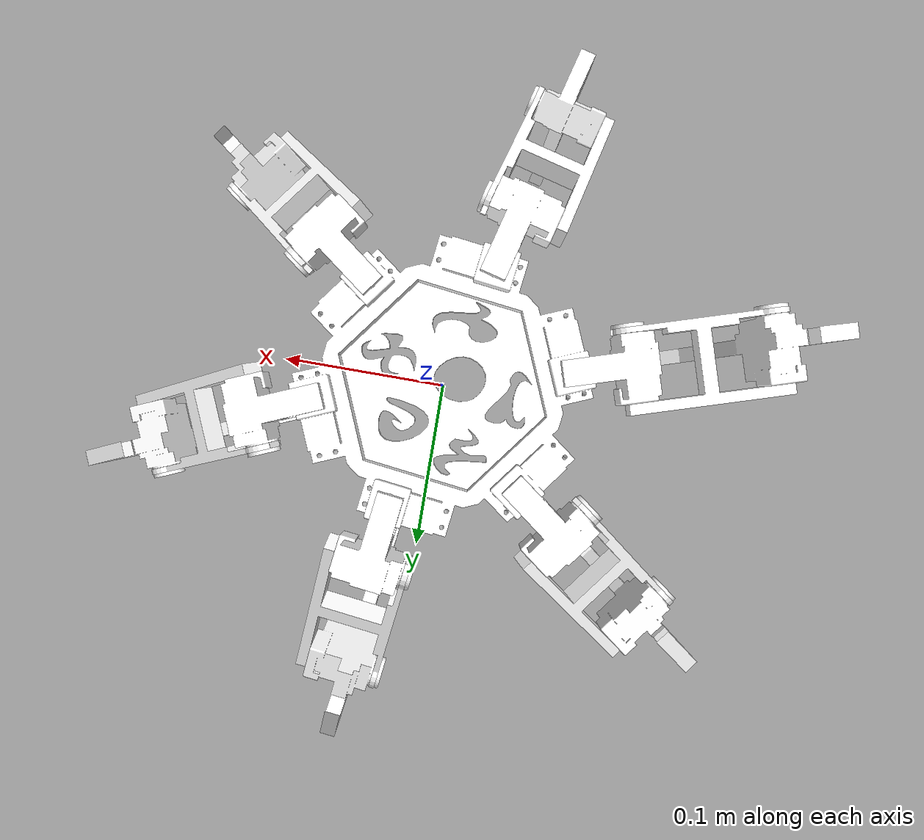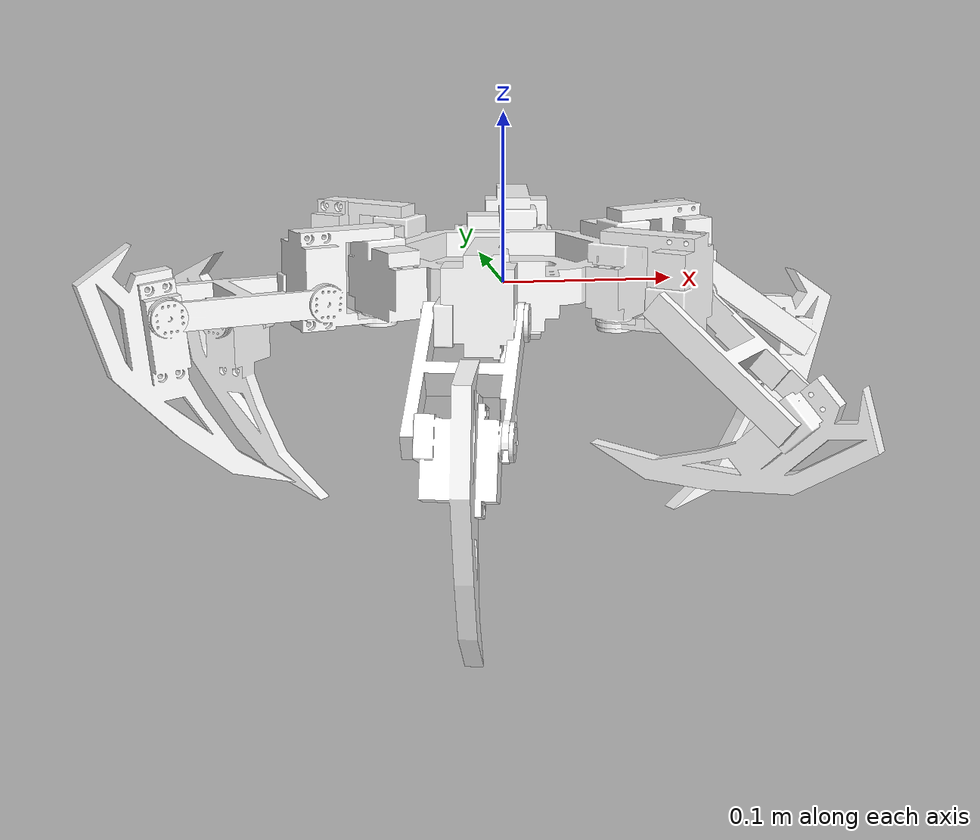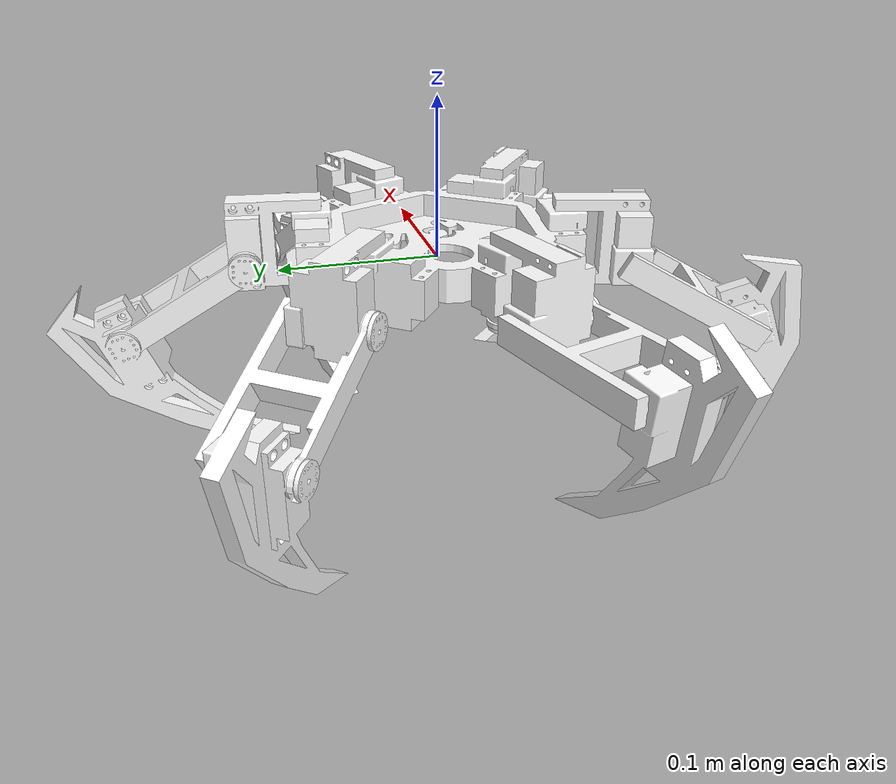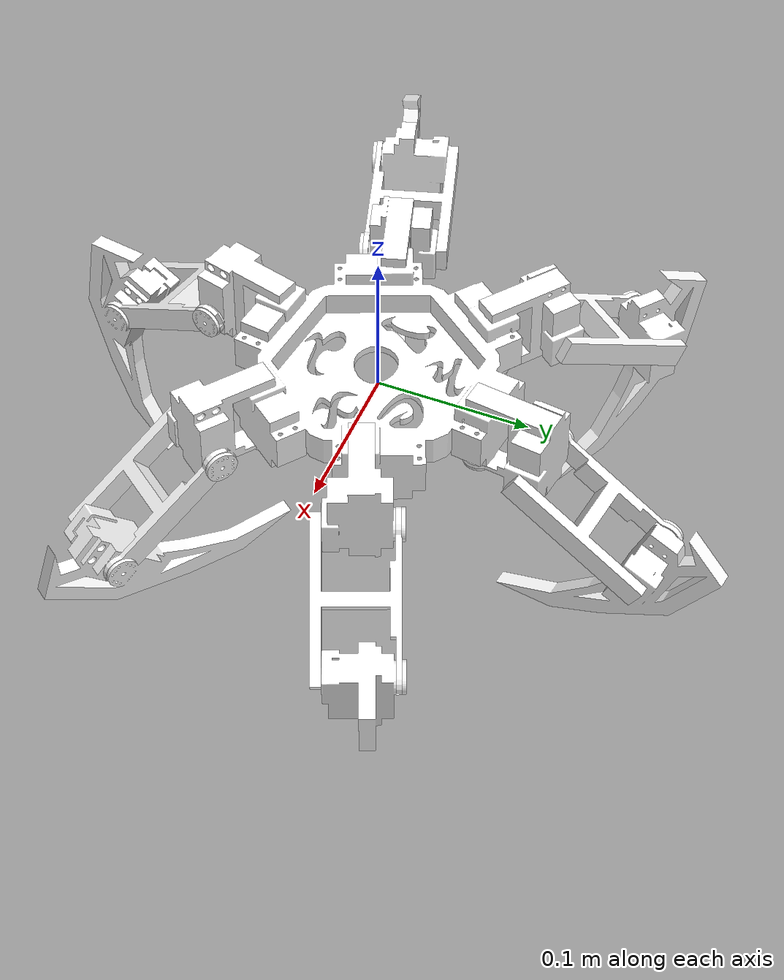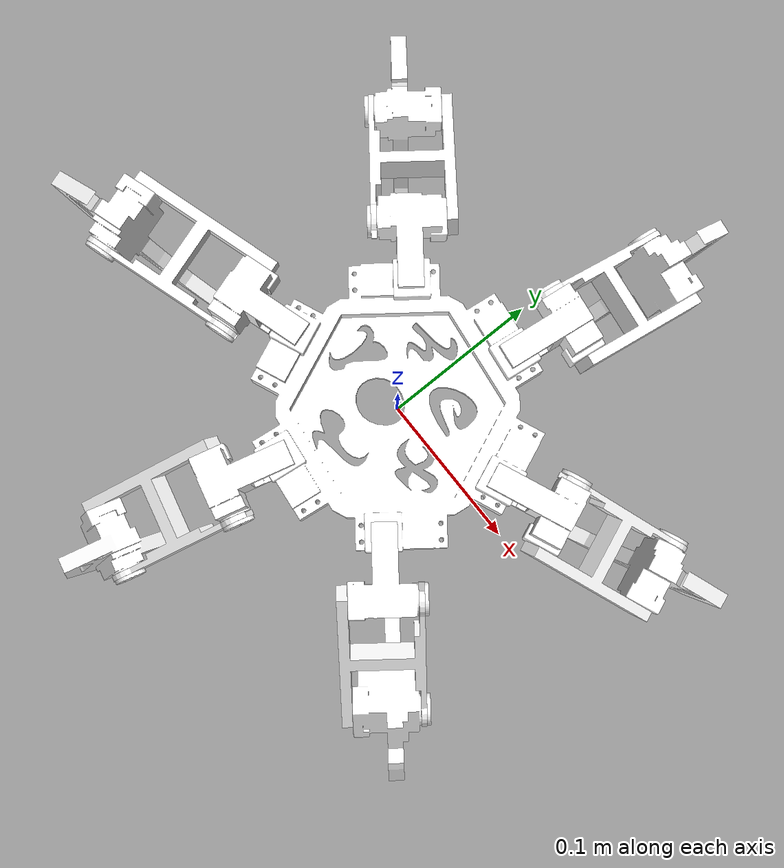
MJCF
<mujoco model="hexapod_urdf_2">
  <compiler angle="radian" meshdir="meshes/"/>

  <asset>
    <mesh name="body" file="body.STL"/>
    <mesh name="haunch1" file="haunch1.STL"/>
    <mesh name="thigh1" file="thigh1.STL"/>
    <mesh name="calf1" file="calf1.STL"/>
    <mesh name="haunch2" file="haunch2.STL"/>
    <mesh name="thigh2" file="thigh2.STL"/>
    <mesh name="calf2" file="calf2.STL"/>
    <mesh name="haunch3" file="haunch3.STL"/>
    <mesh name="thigh3" file="thigh3.STL"/>
    <mesh name="calf3" file="calf3.STL"/>
    <mesh name="haunch4" file="haunch4.STL"/>
    <mesh name="thigh4" file="thigh4.STL"/>
    <mesh name="calf4" file="calf4.STL"/>
    <mesh name="haunch5" file="haunch5.STL"/>
    <mesh name="thigh5" file="thigh5.STL"/>
    <mesh name="calf5" file="calf5.STL"/>
    <mesh name="haunch6" file="haunch6.STL"/>
    <mesh name="thigh6" file="thigh6.STL"/>
    <mesh name="calf6" file="calf6.STL"/>
  </asset>

  <worldbody>
    <geom type="mesh" contype="0" conaffinity="0" group="1" density="0" rgba="1 1 1 1" mesh="body"/>
    <geom type="mesh" rgba="1 1 1 1" mesh="body"/>
    <body name="haunch1" pos="-0.075469 -0.020618 -0.0088" quat="0.994557 0 0 -0.104196">
      <inertial pos="-0.0315562 -0.0169133 0.020469" quat="0.96213 -0.0194545 0.0500179 0.267257" mass="0.0528585" diaginertia="1.69971e-05 1.66339e-05 9.1102e-06"/>
      <joint name="jo_haunch1" pos="0 0 0" axis="0 0 -1" range="-30 50"/>
      <geom type="mesh" contype="0" conaffinity="0" group="1" density="0" rgba="1 1 1 1" mesh="haunch1"/>
      <geom type="mesh" rgba="1 1 1 1" mesh="haunch1"/>
      <body name="thigh1" pos="-0.0343654 -0.0226522 0.01015">
        <inertial pos="-0.044559 -0.01354 -1.3528e-07" quat="-0.17831 0.684257 0.178304 0.684256" mass="0.026678" diaginertia="3.0444e-05 1.84989e-05 1.31461e-05"/>
        <joint name="jo_thigh1" pos="0 0 0" axis="0.488032 -0.872826 0" range="-30 50"/>
        <geom type="mesh" contype="0" conaffinity="0" group="1" density="0" rgba="1 1 1 1" mesh="thigh1"/>
        <geom type="mesh" rgba="1 1 1 1" mesh="thigh1"/>
        <body name="calf1" pos="-0.0794271 -0.0444109 0">
          <inertial pos="-0.000904365 0.00183918 -0.0205292" quat="0.495515 -0.134013 -0.23557 0.825235" mass="0.0696897" diaginertia="7.37256e-05 7.15779e-05 1.14467e-05"/>
          <joint name="jo_calf1" pos="0 0 0" axis="0.488032 -0.872826 0" range="-90 30"/>
          <geom type="mesh" contype="0" conaffinity="0" group="1" density="0" rgba="1 1 1 1" mesh="calf1"/>
          <geom type="mesh" rgba="1 1 1 1" mesh="calf1"/>
        </body>
      </body>
    </body>
    <body name="haunch2" pos="-0.019879 -0.075667 -0.0088" quat="0.994557 0 0 -0.104196">
      <inertial pos="-0.00218988 -0.0357359 0.020469" quat="0.710074 -0.041355 0.0342056 0.702079" mass="0.0528585" diaginertia="1.69971e-05 1.66339e-05 9.1102e-06"/>
      <joint name="jo_haunch2" pos="0 0 0" axis="0 0 -1" range="-30 50"/>
      <geom type="mesh" contype="0" conaffinity="0" group="1" density="0" rgba="1 1 1 1" mesh="haunch2"/>
      <geom type="mesh" rgba="1 1 1 1" mesh="haunch2"/>
      <body name="thigh2" pos="0.001217 -0.041141 0.01015">
        <inertial pos="-0.0116467 -0.0393654 -0.0219897" quat="0.367126 0.595604 -0.622013 0.351532" mass="0.0266778" diaginertia="3.04439e-05 1.84986e-05 1.3146e-05"/>
        <joint name="jo_thigh2" pos="0 0 0" axis="0.999059 -0.043367 0" range="-30 50"/>
        <geom type="mesh" contype="0" conaffinity="0" group="1" density="0" rgba="1 1 1 1" mesh="thigh2"/>
        <geom type="mesh" rgba="1 1 1 1" mesh="thigh2"/>
        <body name="calf2" pos="-0.00345492 -0.079592 -0.0439792">
          <inertial pos="-0.0024392 -0.00899919 -0.0184042" quat="0.998589 0.0422872 0.000302993 -0.0321134" mass="0.0696897" diaginertia="7.37256e-05 7.15779e-05 1.14467e-05"/>
          <joint name="jo_calf2" pos="0 0 0" axis="0.999059 -0.043367 0" range="-90 30"/>
          <geom type="mesh" contype="0" conaffinity="0" group="1" density="0" rgba="1 1 1 1" mesh="calf2"/>
          <geom type="mesh" rgba="1 1 1 1" mesh="calf2"/>
        </body>
      </body>
    </body>
    <body name="haunch3" pos="0.075469 0.020618 -0.0088" quat="0.994557 0 0 -0.104196">
      <inertial pos="0.0297565 0.0199099 0.020469" quat="0.947936 0.0218729 -0.0490086 0.313905" mass="0.0528585" diaginertia="1.69971e-05 1.66339e-05 9.1102e-06"/>
      <joint name="jo_haunch3" pos="0 0 0" axis="0 0 -1" range="-30 50"/>
      <geom type="mesh" contype="0" conaffinity="0" group="1" density="0" rgba="1 1 1 1" mesh="haunch3"/>
      <geom type="mesh" rgba="1 1 1 1" mesh="haunch3"/>
      <body name="thigh3" pos="0.0319927 0.0258953 0.01015">
        <inertial pos="0.0367629 0.0134657 -0.0252189" quat="-0.141201 0.841192 0.263677 0.45048" mass="0.0266778" diaginertia="3.04439e-05 1.84986e-05 1.3146e-05"/>
        <joint name="jo_thigh3" pos="0 0 0" axis="-0.570818 0.821076 0" range="-30 50"/>
        <geom type="mesh" contype="0" conaffinity="0" group="1" density="0" rgba="1 1 1 1" mesh="thigh3"/>
        <geom type="mesh" rgba="1 1 1 1" mesh="thigh3"/>
        <body name="calf3" pos="0.0621911 0.0432357 -0.0504376">
          <inertial pos="0.00114987 -0.00169323 -0.0205295" quat="0.454909 0.12144 0.240038 0.848936" mass="0.0696897" diaginertia="7.37256e-05 7.15779e-05 1.14467e-05"/>
          <joint name="jo_calf3" pos="0 0 0" axis="-0.570818 0.821076 0" range="-90 30"/>
          <geom type="mesh" contype="0" conaffinity="0" group="1" density="0" rgba="1 1 1 1" mesh="calf3"/>
          <geom type="mesh" rgba="1 1 1 1" mesh="calf3"/>
        </body>
      </body>
    </body>
    <body name="haunch4" pos="0.0555907 -0.0550491 -0.0088" quat="0.994557 0 0 -0.104196">
      <inertial pos="0.0321207 -0.015815 0.020469" quat="0.977889 -0.00556175 -0.0533791 -0.20212" mass="0.0528585" diaginertia="1.69971e-05 1.66339e-05 9.1102e-06"/>
      <joint name="jo_haunch4" pos="0 0 0" axis="0 0 -1" range="-30 50"/>
      <geom type="mesh" contype="0" conaffinity="0" group="1" density="0" rgba="1 1 1 1" mesh="haunch4"/>
      <geom type="mesh" rgba="1 1 1 1" mesh="haunch4"/>
      <body name="thigh4" pos="0.038422 -0.014759 0.01015">
        <inertial pos="0.0280326 -0.024159 -0.0282726" quat="0.0948891 0.878711 -0.196352 0.424628" mass="0.0266778" diaginertia="3.04439e-05 1.84986e-05 1.3146e-05"/>
        <joint name="jo_thigh4" pos="0 0 0" axis="0.425661 0.904883 0" range="-30 50"/>
        <geom type="mesh" contype="0" conaffinity="0" group="1" density="0" rgba="1 1 1 1" mesh="thigh4"/>
        <geom type="mesh" rgba="1 1 1 1" mesh="thigh4"/>
        <body name="calf4" pos="0.0645179 -0.0303497 -0.056545">
          <inertial pos="-0.01294 0.0038254 -0.015607" quat="0.688788 0.490599 0.319429 0.427608" mass="0.06969" diaginertia="7.37257e-05 7.15778e-05 1.14465e-05"/>
          <joint name="jo_calf4" pos="0 0 0" axis="0.425664 0.904881 0" range="-90 30"/>
          <geom type="mesh" contype="0" conaffinity="0" group="1" density="0" rgba="1 1 1 1" mesh="calf4"/>
          <geom type="mesh" rgba="1 1 1 1" mesh="calf4"/>
        </body>
      </body>
    </body>
    <body name="haunch5" pos="0.019879 0.075667 -0.0088" quat="0.994557 0 0 -0.104196">
      <inertial pos="-0.00236418 0.0357248 0.020469" quat="0.663985 0.0434468 -0.0315062 0.745818" mass="0.0528585" diaginertia="1.69971e-05 1.66339e-05 9.1102e-06"/>
      <joint name="jo_haunch5" pos="0 0 0" axis="0 0 -1" range="-30 50"/>
      <geom type="mesh" contype="0" conaffinity="0" group="1" density="0" rgba="1 1 1 1" mesh="haunch5"/>
      <geom type="mesh" rgba="1 1 1 1" mesh="haunch5"/>
      <body name="thigh5" pos="-0.00642965 0.0406542 0.01015">
        <inertial pos="0.00661793 0.0397817 -0.0232905" quat="0.588464 0.363671 -0.334373 0.640038" mass="0.0266778" diaginertia="3.04439e-05 1.84986e-05 1.3146e-05"/>
        <joint name="jo_thigh5" pos="0 0 0" axis="-0.996482 -0.0838051 0" range="-30 50"/>
        <geom type="mesh" contype="0" conaffinity="0" group="1" density="0" rgba="1 1 1 1" mesh="thigh5"/>
        <geom type="mesh" rgba="1 1 1 1" mesh="thigh5"/>
        <body name="calf5" pos="-0.00655141 0.0778994 -0.0465807">
          <inertial pos="0.0025306 -0.0056684 -0.019675" quat="0.404029 0.914021 0.0290848 0.0219172" mass="0.06969" diaginertia="7.37254e-05 7.15784e-05 1.14463e-05"/>
          <joint name="jo_calf5" pos="0 0 0" axis="-0.996482 -0.0838051 0" range="-90 30"/>
          <geom type="mesh" contype="0" conaffinity="0" group="1" density="0" rgba="1 1 1 1" mesh="calf5"/>
          <geom type="mesh" rgba="1 1 1 1" mesh="calf5"/>
        </body>
      </body>
    </body>
    <body name="haunch6" pos="-0.055591 0.055049 -0.0088" quat="0.994557 0 0 -0.104196">
      <inertial pos="-0.032121 0.015815 0.020469" quat="0.977852 0.00555109 0.0533798 -0.2023" mass="0.052859" diaginertia="1.69973e-05 1.66343e-05 9.11024e-06"/>
      <joint name="jo_haunch6" pos="0 0 0" axis="0 0 -1" range="-30 50"/>
      <geom type="mesh" contype="0" conaffinity="0" group="1" density="0" rgba="1 1 1 1" mesh="haunch6"/>
      <geom type="mesh" rgba="1 1 1 1" mesh="haunch6"/>
      <body name="thigh6" pos="-0.0384224 0.0147589 0.01015">
        <inertial pos="-0.0321359 0.0260892 -0.0213415" quat="0.186901 0.502845 -0.112368 0.836414" mass="0.0266778" diaginertia="3.04439e-05 1.84986e-05 1.3146e-05"/>
        <joint name="jo_thigh6" pos="0 0 0" axis="-0.425664 -0.904881 0" range="-30 50"/>
        <geom type="mesh" contype="0" conaffinity="0" group="1" density="0" rgba="1 1 1 1" mesh="thigh6"/>
        <geom type="mesh" rgba="1 1 1 1" mesh="thigh6"/>
        <body name="calf6" pos="-0.072724 0.03421 -0.042683">
          <inertial pos="-0.00075668 0.0026177 -0.020451" quat="0.827747 -0.189111 -0.12371 0.513583" mass="0.06969" diaginertia="7.37259e-05 7.15782e-05 1.14459e-05"/>
          <joint name="jo_calf6" pos="0 0 0" axis="-0.425661 -0.904883 0" range="-90 30"/>
          <geom type="mesh" contype="0" conaffinity="0" group="1" density="0" rgba="1 1 1 1" mesh="calf6"/>
          <geom type="mesh" rgba="1 1 1 1" mesh="calf6"/>
        </body>
      </body>
    </body>
  </worldbody>
</mujoco>
